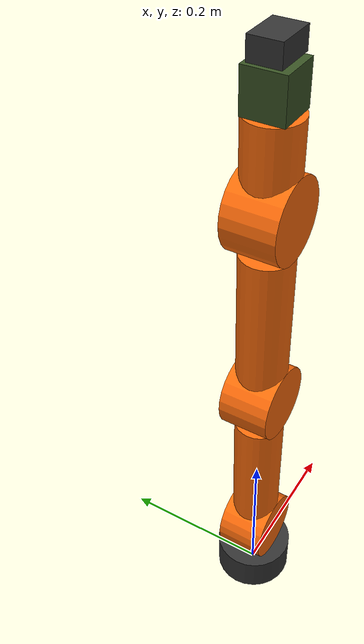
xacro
<?xml version="1.0"?>
<robot name="poke_arm_main" xmlns:xacro="http://ros.org/wiki/xacro"
    xmlns:sensor="http://playerstage.sourceforge.net/gazebo/xmlschema/#sensor"
    xmlns:controller="http://playerstage.sourceforge.net/gazebo/xmlschema/#controller"
    xmlns:interface="http://playerstage.sourceforge.net/gazebo/xmlschema/#interface">

    <!-- Included URDF Files -->
    <xacro:include filename="$(find poke_description)/urdf/poke.xacro" />

    <!--
    For simulating only the arm, we'll use "world" as the link name.
    For using it on the turtlebot, use "base_link" as the link name.
    -->

    <!-- As we don't have here a turtlebot, add a base_link link as its location reference -->
    <link name="world"/>

    <!-- Poke arm macro: we can configure joints velocity limit -->
    <poke_arm parent="world" color="white" joints_vlimit="1.571">
      <!-- Place the "floating" arm at the location it should be if mounted on a turtlebot -->
      <!-- origin xyz="0.1 0.03 0.435"/-->
      <origin xyz="0 0 0"/>
    </poke_arm>
</robot>

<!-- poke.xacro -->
<robot xmlns:xacro="http://ros.org/wiki/xacro">
  <!-- Var -->
  <xacro:property name="PI" value="3.14159"/>
  <xacro:property name="rb" value="0.05" />        <!-- Cylinder Radius Base -->
  <xacro:property name="r0" value="0.03" />        <!-- Cylinder Radius -->
  <xacro:property name="l0" value="0.05" />        <!-- Cylinder Length Base-->
  <xacro:property name="jr" value="${1.5*r0}" />   <!-- Joint cylinder Radius -->
  <xacro:property name="l1" value="0.2" />         <!-- Cylinder Length Primary-->
  <xacro:property name="l2" value="0.1" />         <!-- Cylinder Length Secondary-->
  <xacro:property name="mass" value="1e-2" />       <!-- arbitrary value for mass -->

  <xacro:property name="cam_name" value="cameraB"/>

  <!-- Imports -->
  <!-- Get parts from the hardware xacro file -->
  <xacro:include filename="$(find poke_description)/urdf/poke_hardware.xacro"/>
  <!-- Gazebo settings -->
  <xacro:include filename="$(find poke_description)/urdf/poke.gazebo"/>

  <material name="white">
    <color rgba="0.87 0.90 0.87 1.0"/>
   </material>
  <material name="black">
    <color rgba="0.0 0.0 0.0 1.0"/>
   </material>
  <material name="green">
    <color rgba="0.22 0.32 0.14 1.0"/>
   </material>
  <material name="grey">
     <color rgba="0.2 0.2 0.2 1.0"/>
   </material>
  <material name="orange">
     <color rgba="1.0 ${108/255} ${10/255} 1.0"/>
   </material>

  <xacro:macro name="poke_arm" params="parent color *origin joints_vlimit">
  <!-- base_link -->
  <link name="poke_base_link" />
  <joint name="poke_base_joint" type="fixed">
    <insert_block name="origin" />
    <parent link="${parent}"/>
    <child link="poke_base_link" />
   </joint>

  <!-- Base mount-->
  <base_mount parent="poke_base_link" name="baseMount" color="grey">
  <origin xyz="0 0 0" rpy="0 0 0"/>
  </base_mount>
  <!-- Torso [p0] -->
  <segmentL parent="baseMount_link" name="p0" color="orange"
    llimit="-${1/3*PI}" ulimit="${0.48*PI}" vlimit="5">
    <origin rpy="0 0 0" xyz="0.0 0.0 ${l0+jr}" />
  </segmentL>
  <!-- Shoulder [p1] -->
  <segmentL parent="p0_link" name="p1" color="orange"
    llimit="0" ulimit="${2/3*PI}" vlimit="5">
    <origin rpy="0 0 0" xyz="0.0 0.0 ${l1+jr}" />
  </segmentL>
  <!-- Arm [p2] -->
  <segmentS parent="p1_link" name="p2" color="orange"
    llimit="-${2/3*PI}" ulimit="${2/3*PI}" vlimit="5"/>
  <!-- Wrist [p3] -->
  <cSeg parent="p2_link" name="p3" color="green"/>

  <!-- Camera -->
  <cam parent="p3_link" name="${cam_name}" />
  <cam_gazebo camName="${cam_name}" />

  <!-- Motor Transmission -->
  <mtrT jointName="p0_joint"/>
  <mtrT jointName="p1_joint"/>
  <mtrT jointName="p2_joint"/>
  <mtrT jointName="p3_joint"/>

  </xacro:macro>
</robot>

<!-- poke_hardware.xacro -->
<robot xmlns:xacro="http://ros.org/wiki/xacro">

    <xacro:macro name="inertial_block" params="mass length radius">
        <inertial>
        <origin xyz="0 0 ${length/2}" rpy="0 0 0"/>
        <mass value="${mass}"/>
        <inertia
            ixx="${mass / 12.0 * (2*radius*2*radius + length*length)}" ixy="0.0" ixz="0.0"
            iyy="${mass / 12.0 * (length*length + 2*radius*2*radius)}" iyz="0.0"
            izz="${mass / 12.0 * (2*radius*2*radius + 2*radius*2*radius)}" />
    </inertial>
    </xacro:macro>

   <!-- macro for arm base mount -->
   <xacro:macro name="base_mount" params="parent name color *origin">
      <joint name="${name}_joint" type="fixed">
         <insert_block name="origin" />
         <parent link="${parent}" />
         <child link="${name}_link" />
      </joint>
      <link name="${name}_link">
         <inertial>
            <mass value="${mass}" />
            <origin xyz="0 0 ${l0/2}" />
            <inertia ixx="${mass/1e2}" ixy="0" ixz="0" iyy="${mass/1e2}" iyz="0" izz="${mass/1e2}" />
         </inertial>
         <visual>
            <origin xyz="0 0 ${l0/2}" />
            <geometry>
               <cylinder length="${l0}" radius="${rb}" />
            </geometry>
            <material name="${color}" />
         </visual>
         <collision>
            <origin xyz="0 0 ${l0/2}" />
            <geometry>
               <cylinder length="${l0}" radius="${rb}" />
            </geometry>
         </collision>
      </link>
   </xacro:macro>
   <!-- macro for one segment, long -->
   <xacro:macro name="segmentL" params="parent name color llimit ulimit vlimit *origin">
      <joint name="${name}_joint" type="revolute">
         <insert_block name="origin" />
         <parent link="${parent}" />
         <child link="${name}_link" />
         <axis xyz="0 1 0" />
         <limit lower="${llimit}" upper="${ulimit}" velocity="${vlimit}" effort="100" />
         <!--origin rpy="0 0 0" xyz="0.0 0.0 ${l1+jr}" /-->
      </joint>
      <link name="${name}_link">
         <inertial>
            <mass value="${mass}" />
            <origin rpy="0 0 0" xyz="0 0 ${l1/2}" />
            <inertia ixx="${mass/1e2}" ixy="0" ixz="0" iyy="${mass/1e2}" iyz="0" izz="${mass/1e2}" />
            <origin rpy="0 0 0" xyz="0 0 ${l1/2}" />
         </inertial>
         <!-- Visual for segment joint -->
         <visual name="${name}_joint_v">
            <geometry>
               <cylinder length="${2*r0}" radius="${jr}" />
            </geometry>
            <origin rpy="${PI/2} 0 0" xyz="0 0 0" />
            <material name="${color}" />
         </visual>
         <collision name="${name}_joint_c">
            <geometry>
               <cylinder length="${2*r0}" radius="${jr}" />
            </geometry>
            <origin rpy="${PI/2} 0 0" xyz="0 0 0" />
         </collision>
         <!-- Visual for main segment -->
         <visual name="${name}_segmentL_v">
            <geometry>
               <cylinder length="${l1}" radius="${r0}" />
            </geometry>
            <origin rpy="0 0 0" xyz="0 0 ${l1/2}" />
            <material name="${color}" />
         </visual>
         <collision name="${name}_segmentL_c">
            <geometry>
               <cylinder length="${l1}" radius="${r0}" />
            </geometry>
            <origin rpy="0 0 0" xyz="0 0 ${l1/2}" />
         </collision>
      </link>
   </xacro:macro>
   <!-- macro for one segment, short -->
   <xacro:macro name="segmentS" params="parent name color llimit ulimit vlimit">
      <joint name="${name}_joint" type="revolute">
         <parent link="${parent}" />
         <child link="${name}_link" />
         <axis xyz="0 1 0" />
         <limit lower="${llimit}" upper="${ulimit}" velocity="${vlimit}" effort="100" />
         <origin rpy="0 0 0" xyz="0.0 0.0 ${l1+jr}" />
      </joint>
      <link name="${name}_link">
         <inertial>
            <mass value="${mass}" />
            <inertia ixx="${mass/1e2}" ixy="0" ixz="0" iyy="${mass/1e2}" iyz="0" izz="${mass/1e2}" />
            <origin rpy="0 0 0" xyz="0 0 ${l2/2}" />
         </inertial>
         <!-- Visual for segment joint -->
         <visual name="${name}_joint_v">
            <geometry>
               <cylinder length="${2*r0}" radius="${jr}" />
            </geometry>
            <origin rpy="${PI/2} 0 0" xyz="0 0 0" />
            <material name="${color}" />
         </visual>
         <collision name="${name}_joint_c">
            <geometry>
               <cylinder length="${2*r0}" radius="${jr}" />
            </geometry>
            <origin rpy="${PI/2} 0 0" xyz="0 0 0" />
         </collision>
         <!-- Visual for main segment -->
         <visual name="${name}_segmentS_v">
            <geometry>
               <cylinder length="${l2}" radius="${r0}" />
            </geometry>
            <origin rpy="0 0 0" xyz="0 0 ${l2/2}" />
            <material name="${color}" />
         </visual>
         <collision name="${name}_segmentS_c">
            <geometry>
               <cylinder length="${l2}" radius="${r0}" />
            </geometry>
            <origin rpy="0 0 0" xyz="0 0 ${l2/2}" />
         </collision>
      </link>
   </xacro:macro>
   <!-- macro for continuous segment -->
   <xacro:macro name="cSeg" params="parent name color">
      <joint name="${name}_joint" type="continuous">
         <axis xyz="0 0 1" />
         <parent link="${parent}" />
         <child link="${name}_link" />
         <origin rpy="0 0 0" xyz="0.0 0.0 ${l2+jr/2}" />
      </joint>
      <link name="${name}_link">
         <inertial>
            <mass value="${mass}" />
            <origin rpy="0 0 0" xyz="0 0 0" />
            <inertia ixx="${mass/1e2}" ixy="0" ixz="0" iyy="${mass/1e2}" iyz="0" izz="${mass/1e2}" />
         </inertial>
         <!-- Visual for segment -->
         <visual name="${name}_cSeg_v">
            <geometry>
               <box size="${jr} ${jr} ${jr}" />
            </geometry>
            <material name="${color}" />
            <origin rpy="0 0 0" xyz="0 0 0" />
         </visual>
         <collision name="${name}_cSeg_c">
            <geometry>
               <box size="${jr} ${jr} ${jr}" />
            </geometry>
            <origin rpy="0 0 0" xyz="0 0 0" />
         </collision>
      </link>
   </xacro:macro>

   <xacro:macro name="gripper" params="parent name">
      <joint name ="gripper_1" type="prismatic">
         <origin xyz="0.0 0.0 ${radius_52 + length_62/2.0}" rpy="0.0 0.0 0.0"/>
         <axis xyz="1 0 0"/>
         <parent link="${parent}" />
         <child link="gripper_link_1"/>
         <limit lower="${radius_62/2.0}" upper="0.5" effort="30.0" velocity="1.0"/>
      </joint>

      <joint name ="gripper_2" type="prismatic">
        <origin xyz="0.0 0.0 ${radius_52 + length_62/2.0}" rpy="0.0 0.0 0.0"/>
        <parent link="${parent}" />
        <child link="gripper_link_2"/>
        <axis xyz="1 0 0"/>
        <limit lower="-0.5" upper="${-radius_62/2.0}" effort="30.0" velocity="1.0"/>
      </joint>

     <joint name="gripper_frame_joint" type="fixed">
        <!--origin xyz="0.0 0.0 ${radius_52*2 + length_62/2 + 0.01}" rpy="0.0 0.0 0.0"/-->
        <axis xyz="0 0 0" />
         <!-- Use the joint to orientate the camera -->
         <origin xyz="0 0 ${.8*jr}" rpy="0 ${-PI/2} 0" />
        <parent link="${parent}"/>
        <child link="gripper_frame_cp"/>
    </joint>

     <link name="gripper_link_1">
        <xacro:inertial_block mass="${mass_62}" length="${length_62}" radius="${radius_62}"/>
        <visual>
            <origin xyz="${radius_62/2} 0.0 ${radius_62/2.0}" rpy="0.0 0.0 0.0"/>
            <geometry>
                <box size="${radius_62/2} ${radius_62*2} ${length_62}"/>
            </geometry>
        </visual>

        <collision>
            <origin xyz="${radius_62/2} 0.0 ${radius_62/2.0}" rpy="0.0 0.0 0.0"/>
            <geometry>
                <box size="${radius_62/2} ${radius_62*2} ${length_62}"/>
            </geometry>
        </collision>
    </link>

     <link name="gripper_link_2">
        <xacro:inertial_block mass="${mass_62}" length="${length_62}" radius="${radius_62}"/>
        <visual>
            <origin xyz="${-radius_62/2} 0.0 ${radius_62/2.0}" rpy="0.0 0.0 0.0"/>
            <geometry>
                <box size="${radius_62/2} ${radius_62*2} ${length_62}"/>
            </geometry>
        </visual>

        <collision>
            <origin xyz="{-radius_62/2} 0.0 ${radius_62/2.0}" rpy="0.0 0.0 0.0"/>
            <geometry>
                <box size="${radius_62/2} ${radius_62*2} ${length_62}"/>
            </geometry>
        </collision>
    </link>

    <link name="gripper_frame_cp">
        <visual>
            <origin xyz="0 0 0" rpy="0 0 0" />
            <geometry>
               <box size="${jr/2} ${.75*jr} ${jr}" />
            </geometry>
            <material name="grey">
               <color rgba="0.2 0.2 0.2 1.0" />
            </material>
         </visual>
         <collision>
            <origin xyz="0 0 0" rpy="0 0 0" />
            <geometry>
               <box size="${jr/2} ${.75*jr} ${jr}" />
            </geometry>
         </collision>
         <inertial>
            <mass value="0.01" />
            <origin xyz="0 0 0" rpy="0 0 0" />
            <inertia ixx="1e-6" ixy="0" ixz="0" iyy="1e-6" iyz="0" izz="1e-6" />
         </inertial>
      </link>
   </xacro:macro>

   <xacro:macro name="cam" params="parent name">
      <!-- Camera joint-->
      <joint name="${name}_camJoint" type="fixed">
         <axis xyz="0 0 0" />
         <!-- Use the joint to orientate the camera -->
         <origin xyz="0 0 ${.8*jr}" rpy="0 ${-PI/2} 0" />
         <parent link="${parent}" />
         <child link="${name}_cam" />
      </joint>
      <link name="${name}_cam">
         <visual>
            <origin xyz="0 0 0" rpy="0 0 0" />
            <geometry>
               <box size="${jr/2} ${.75*jr} ${jr}" />
            </geometry>
            <material name="grey">
               <color rgba="0.2 0.2 0.2 1.0" />
            </material>
         </visual>
         <collision>
            <origin xyz="0 0 0" rpy="0 0 0" />
            <geometry>
               <box size="${jr/2} ${.75*jr} ${jr}" />
            </geometry>
         </collision>
         <inertial>
            <mass value="0.01" />
            <origin xyz="0 0 0" rpy="0 0 0" />
            <inertia ixx="1e-6" ixy="0" ixz="0" iyy="1e-6" iyz="0" izz="1e-6" />
         </inertial>
      </link>
      <!-- generate an optical frame http://www.ros.org/reps/rep-0103.html#suffix-frames
      so that ros and opencv can operate on the camera frame correctly -->
      <joint name="${name}_cam_optical_joint" type="fixed">
         <!-- these values have to be these values otherwise the gazebo camera image
        won't be aligned properly with the frame it is supposedly originating from -->
         <origin xyz="0 0 0" rpy="${-PI/2} 0 ${-PI/2}" />
         <parent link="${name}_cam" />
         <child link="${name}_cam_link_optical" />
      </joint>
      <link name="${name}_cam_link_optical" />
   </xacro:macro>

   <!-- Macro for motor transmission -->
   <xacro:macro name="mtrT" params="jointName">
      <transmission name="${jointName}_tran">
         <type>transmission_interface/SimpleTransmission</type>
         <joint name="${jointName}">
            <hardwareInterface>PositionJointInterface</hardwareInterface>
         </joint>
         <actuator name="${jointName}_motor">
            <hardwareInterface>PositionJointInterface</hardwareInterface>
            <mechanicalReduction>1</mechanicalReduction>
         </actuator>
      </transmission>
   </xacro:macro>

   <!-- Macro for camera gazebo setting -->
   <xacro:macro name="cam_gazebo" params="camName">
   <gazebo reference="${camName}_cam">
      <sensor type="depth" name="camera">
         <always_on>true</always_on>
         <update_rate>20.0</update_rate>
         <camera>
            <horizontal_fov>${60.0*PI/180.0}</horizontal_fov>
            <image>
               <format>B8G8R8</format>
               <width>320</width>
               <height>240</height>
            </image>
            <clip>
               <near>0.01</near>
               <far>18.0</far>
            </clip>
         </camera>
         <plugin name="kinect_camera_controller" filename="libgazebo_ros_openni_kinect.so">
            <cameraName>${camName}</cameraName>
            <alwaysOn>true</alwaysOn>
            <updateRate>10</updateRate>
            <imageTopicName>rgb/image_raw</imageTopicName>
            <depthImageTopicName>depth/image_raw</depthImageTopicName>
            <pointCloudTopicName>depth/points</pointCloudTopicName>
            <cameraInfoTopicName>rgb/camera_info</cameraInfoTopicName>
            <depthImageCameraInfoTopicName>depth/camera_info</depthImageCameraInfoTopicName>
            <frameName>${camName}_depth_optical_frame</frameName>
            <baseline>0.1</baseline>
            <distortion_k1>0.0</distortion_k1>
            <distortion_k2>0.0</distortion_k2>
            <distortion_k3>0.0</distortion_k3>
            <distortion_t1>0.0</distortion_t1>
            <distortion_t2>0.0</distortion_t2>
            <pointCloudCutoff>0.4</pointCloudCutoff>
         </plugin>
      </sensor>
   </gazebo>
   </xacro:macro>

</robot>
